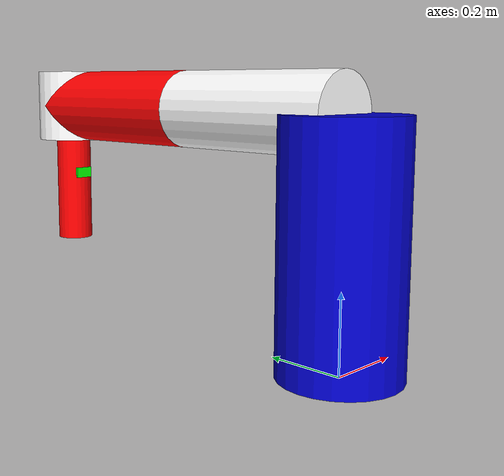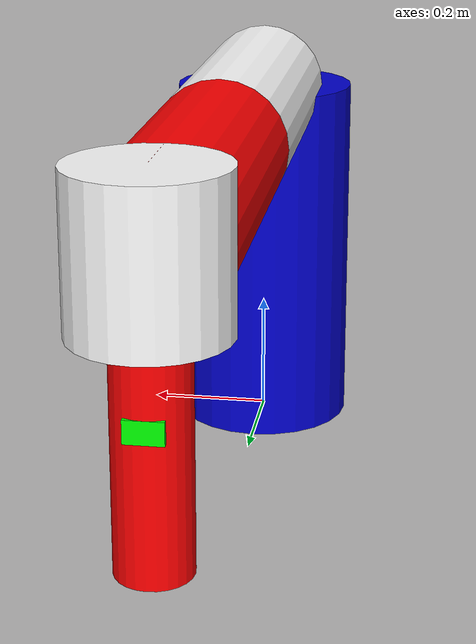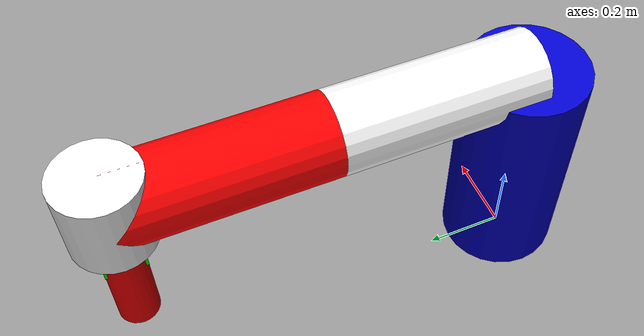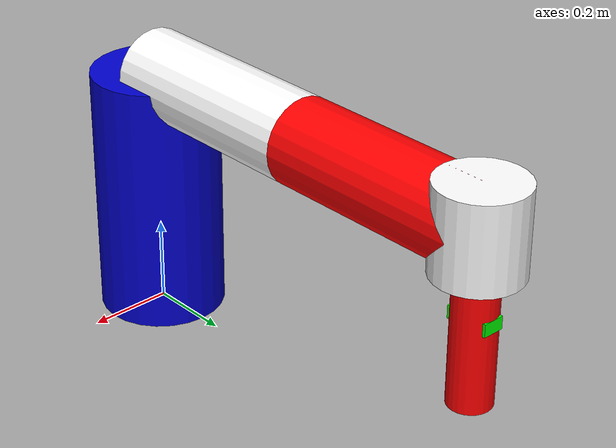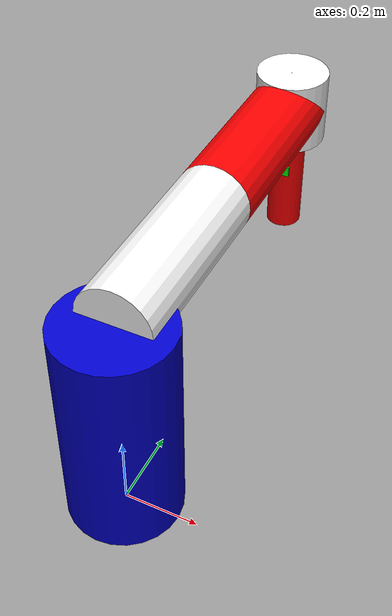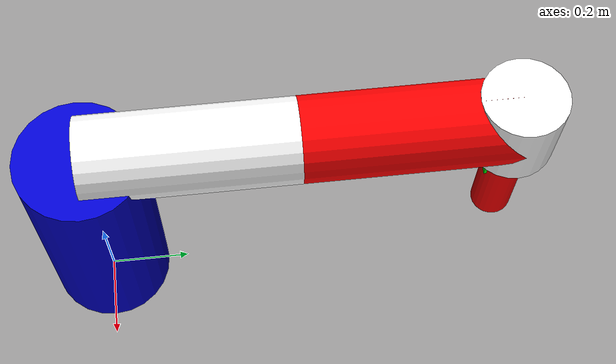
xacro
<?xml version="1.0"?>
<robot xmlns:xacro="http://www.ros.org/wiki/xacro" name="SCARA">

<xacro:property name="base_height" value="0.6" />
<xacro:property name="l1" value="0.5" />
<xacro:property name="l2" value="0.5" />
<xacro:property name="l3" value="0.2" />
<xacro:property name="l4" value="0.4" />
<xacro:property name="l0" value="0.4" />

<xacro:property name="m1" value="6.5" />
<xacro:property name="m2" value="3.5" />
<xacro:property name="m3" value="2.5" />
<xacro:property name="m4" value="1.5" />

<xacro:property name="m1" value="6.5" />

<xacro:property name="PI" value="3.1415" />
<xacro:property name="lb" value="${-PI}" />
<xacro:property name="ub" value="${PI}" />

  <material name="blue">
    <color rgba="0 0 0.8 1"/>
  </material>

  <material name="white">
    <color rgba="1 1 1 1"/>
  </material>

  <material name="green">
    <color rgba="0 1 0 1"/>
  </material>

  <material name="red">
    <color rgba="1 0 0 1"/>
  </material>

  <link name="world"/>
  <joint name="arm_to_world_fixed" type="fixed">
    <parent link="world"/>
    <child link="base_link"/>
    <origin xyz="0 0 0" rpy="0 0 0" />
  </joint>

  <link name="base_link">
   <inertial>
     <origin xyz="0 0 0" rpy="0 0 0"/>
     <mass value="0"/>
     <inertia ixx="0"  ixy="0"  ixz="0" iyy="0" iyz="0" izz="0" />
   </inertial>

    <visual>
      <geometry>
	      <cylinder length="${base_height}" radius="0.15"/>
      </geometry>
    <origin rpy="0 0 0" xyz="0 0 ${base_height/2}"/>
      <material name="blue"/>
    </visual>
  </link>

  <link name="link_1">
   <inertial>
     <origin xyz="0 ${l1/2} 0" rpy="0 0 0"/>
     <mass value="${m1}"/>
     <inertia ixx="1"  ixy="0"  ixz="0" iyy="1" iyz="0" izz="1" />
   </inertial>
    <visual>
      <geometry>
	      <cylinder length="${l1}" radius="0.1"/>
      </geometry>
      <material name="white"/>
      <origin rpy="${-PI/2} 0 0" xyz="0 ${l1/2} 0"/>
    </visual>
  </link>

  <joint name="joint_1" type="revolute">
    <axis xyz="0 0 1"/>
    <limit effort="1000.0" lower="${lb}" upper="${ub}" velocity="0.5"/>
    <origin rpy="0 0 0" xyz="0 0 ${base_height}"/>
    <parent link="base_link"/>
    <child link="link_1"/>
  </joint>

  <link name="link_2">
   <inertial>
     <origin xyz="0 ${l2/2} 0" rpy="0 0 0"/>
     <mass value="${m2}"/>
     <inertia ixx="1"  ixy="0"  ixz="0" iyy="1" iyz="0" izz="1" />
   </inertial>
    <visual>
      <geometry>
	      <cylinder length="${l2}" radius="0.1"/>
      </geometry>
      <material name="red"/>
      <origin rpy="${-PI/2} 0 0" xyz="0 ${l2/2} 0"/>
    </visual>
  </link>

  <joint name="joint_2" type="revolute">
    <axis xyz="0 0 1"/>
    <limit effort="1000.0" lower="${lb}" upper="${ub}" velocity="0.5"/>
    <parent link="link_1"/>
    <child link="link_2"/>
    <origin xyz="0 ${l1} 0 "/>
  </joint>

  <link name="link_3">
   <inertial>
     <origin xyz="0 0 0" rpy="0 0 0"/>
     <mass value="${m3}"/>
     <inertia ixx="1"  ixy="0"  ixz="0" iyy="1" iyz="0" izz="1" />
   </inertial>
    <visual>
      <geometry>
	      <cylinder length="${l3}" radius="0.1"/>
      </geometry>
      <material name="white"/>
      <origin rpy="0 0 0" xyz="0 0 0"/>
    </visual>
  </link>

  <joint name="joint_3" type="revolute">
    <axis xyz="0 0 1"/>
    <limit effort="1000.0" lower="${lb}" upper="${ub}" velocity="0.5"/>
    <parent link="link_2"/>
    <child link="link_3"/>
    <origin xyz="0 ${l2} 0 "/>
  </joint>

  <link name="link_4">
   <inertial>
     <origin xyz="0 0 0" rpy="0 0 0"/>
     <mass value="${m4}"/>
     <inertia ixx="1"  ixy="0"  ixz="0" iyy="1" iyz="0" izz="1" />
   </inertial>
    <visual>
      <geometry>
	      <cylinder length="${l4}" radius="0.05"/>
      </geometry>
      <material name="red"/>
      <origin rpy="0 0 0" xyz="0 0 0"/>
    </visual>
  </link>

  <joint name="joint_4" type="prismatic">
    <parent link="link_3"/>
    <child link="link_4"/>
    <axis xyz="0 0 1"/>
    <limit effort="1000.0" lower="-0.2" upper="0.2" velocity="0.5"/>
    <origin xyz="0 0 ${-(base_height-l0)} "/>
  </joint>

  <link name="EndEffector">
   <inertial>
     <origin xyz="0 0 0" rpy="0 0 0"/>
     <mass value="0"/>
     <inertia ixx="0"  ixy="0"  ixz="0" iyy="0" iyz="0" izz="0" />
   </inertial>

    <visual>
      <geometry>
	  <box size="0.05 0.1 0.03"/>
      </geometry>
      <material name="green"/>
      <origin rpy="0 0 0" xyz="0 0 0"/>
    </visual>
  </link>

  <joint name="joint_5" type="fixed">
    <parent link="link_4"/>
    <child link="EndEffector"/>
    <origin rpy="0 0 0" xyz="0 0 0"/>
  </joint>

</robot>
